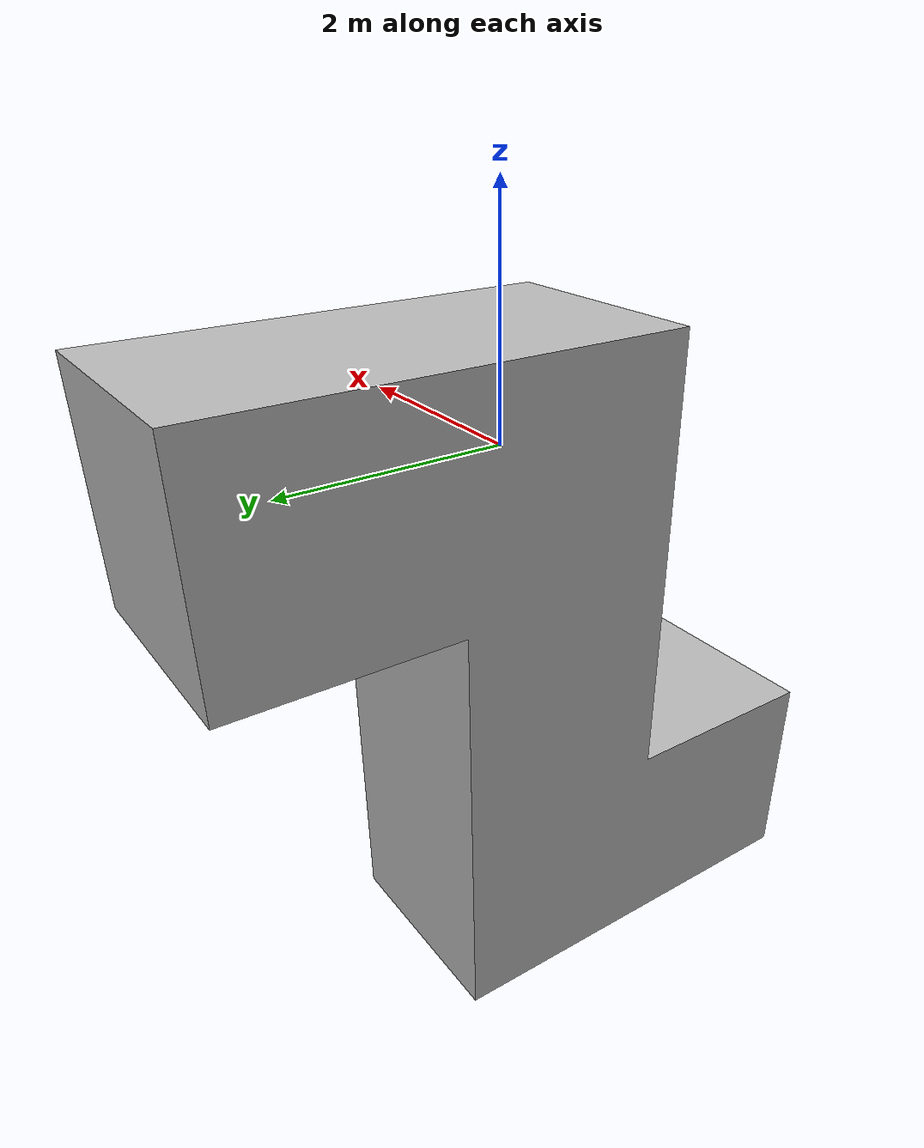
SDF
<?xml version="1.0"?>
<sdf version="1.7"
  xmlns:drake='drake.mit.edu'>
  <model name="sphere">
    <pose>0 0 0 0 0 0</pose>
    <link name="sphere">
      <inertial>
        <mass>1</mass>
        <inertia>
          <ixx>0.42618326391518474</ixx>
          <ixy>4.992010002810956e-20</ixy>
          <ixz>6.5520131286893795e-21</ixz>
          <iyy>0.3736044959046629</iyy>
          <iyz>0.04589469698479443</iyz>
          <izz>0.07896430777815476</izz>
        </inertia>
        <pose>0 0 0 0 0 0</pose>
      </inertial>
      <visual name="sphere_visual">
        <geometry>
          <mesh>
            <scale>1 1 1</scale>
	    <uri>package://drake/examples/hydroelastic/two_spheres/nonconvex.obj</uri>
          </mesh>
        </geometry>
      </visual>
      <collision name="sphere_collision">
        <geometry>
          <mesh>
            <scale>1 1 1</scale>
	    <uri>package://drake/examples/hydroelastic/two_spheres/nonconvex.obj</uri>
          </mesh>
        </geometry>
        <drake:proximity_properties>
          <drake:mesh_resolution_hint>0.2</drake:mesh_resolution_hint>
          <drake:compliant_hydroelastic/>
          <drake:hydroelastic_modulus>1e4</drake:hydroelastic_modulus>
          <drake:hunt_crossley_dissipation>1.5</drake:hunt_crossley_dissipation>
          <drake:mu_dynamic>1.0</drake:mu_dynamic>
        </drake:proximity_properties>
      </collision>
    </link>
  </model>
</sdf>
